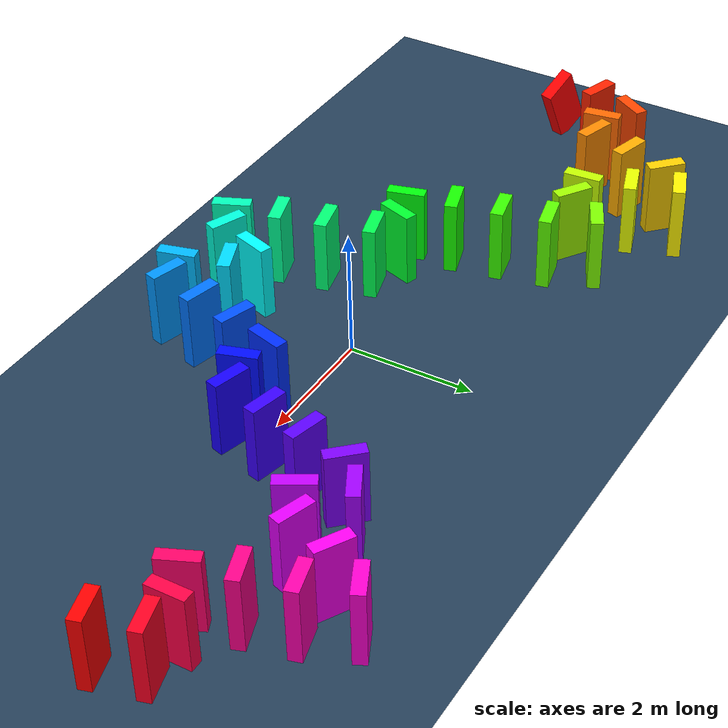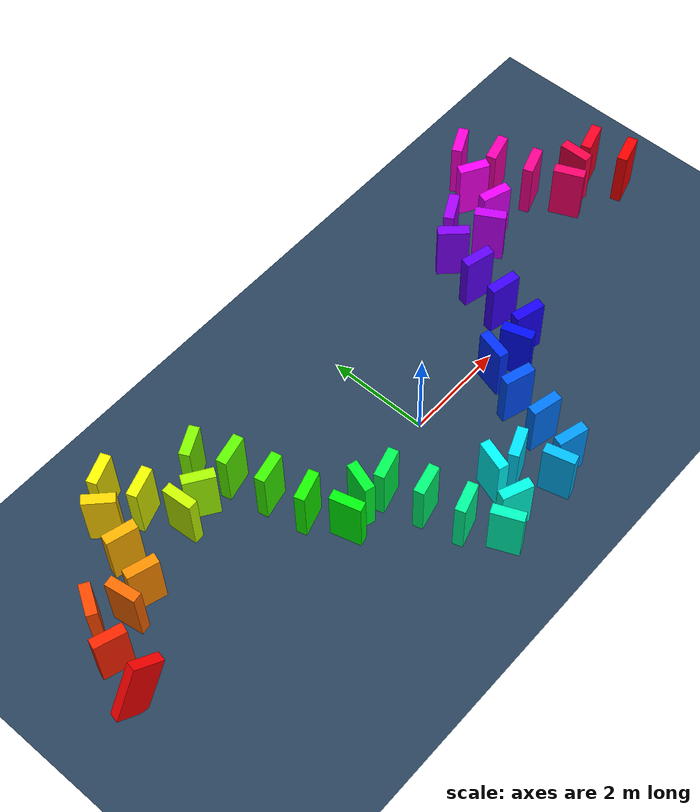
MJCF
<mujoco>
  <visual>
    <headlight diffuse="0.6 0.6 0.6" ambient="0.1 0.1 0.1" specular="0 0 0"/>
    <rgba haze="0.15 0.25 0.35 1"/>
    <global azimuth="120" elevation="-20"/>
  </visual>
  <asset>
    <texture type="skybox" builtin="gradient" rgb1="0.3 0.5 0.7" rgb2="0 0 0" width="512" height="3072"/>
    <texture type="2d" name="groundplane" builtin="checker" mark="edge" rgb1="0.2 0.3 0.4" rgb2="0.1 0.2 0.3" markrgb="0.8 0.8 0.8" width="300" height="300"/>
    <material name="groundplane" texture="groundplane" texuniform="true" texrepeat="5 5" reflectance="0.2"/>
  </asset>
  <worldbody>
    <light pos="0 0 1.5" dir="0 0 -1" directional="true"/>
    <geom name="floor" size="0 0 0.05" type="plane" material="groundplane"/>
    <body name="trigger" pos="-7.0000 0.0000 0.5767" euler="0 28.0 77.4">
      <geom type="box" size="0.1000 0.3000 0.6000" rgba="1.000 0.000 0.000 1"/>
      <freejoint/>
    </body>
    <body name="domino_001" pos="-6.8363 0.7319 0.6000" euler="0 0.0 71.4">
      <geom type="box" size="0.1000 0.3000 0.6000" rgba="1.000 0.136 0.000 1"/>
      <freejoint/>
    </body>
    <body name="domino_002" pos="-6.5982 1.4408 0.6000" euler="0 0.0 -30.8">
      <geom type="box" size="0.1000 0.3000 0.6000" rgba="1.000 0.273 0.000 1"/>
      <freejoint/>
    </body>
    <body name="domino_003" pos="-6.1069 1.1478 0.6000" euler="0 0.0 8.9">
      <geom type="box" size="0.1000 0.3000 0.6000" rgba="1.000 0.409 0.000 1"/>
      <freejoint/>
    </body>
    <body name="domino_004" pos="-5.6272 1.2231 0.6000" euler="0 0.0 73.0">
      <geom type="box" size="0.1000 0.3000 0.6000" rgba="1.000 0.545 0.000 1"/>
      <freejoint/>
    </body>
    <body name="domino_005" pos="-5.4081 1.9400 0.6000" euler="0 0.0 74.5">
      <geom type="box" size="0.1000 0.3000 0.6000" rgba="1.000 0.682 0.000 1"/>
      <freejoint/>
    </body>
    <body name="domino_006" pos="-5.2080 2.6627 0.6000" euler="0 0.0 45.6">
      <geom type="box" size="0.1000 0.3000 0.6000" rgba="1.000 0.818 0.000 1"/>
      <freejoint/>
    </body>
    <body name="domino_007" pos="-4.8010 3.0786 0.6000" euler="0 0.0 -68.5">
      <geom type="box" size="0.1000 0.3000 0.6000" rgba="1.000 0.955 0.000 1"/>
      <freejoint/>
    </body>
    <body name="domino_008" pos="-4.5272 2.3828 0.6000" euler="0 0.0 -71.0">
      <geom type="box" size="0.1000 0.3000 0.6000" rgba="0.909 1.000 0.000 1"/>
      <freejoint/>
    </body>
    <body name="domino_009" pos="-4.2829 1.6741 0.6000" euler="0 0.0 4.2">
      <geom type="box" size="0.1000 0.3000 0.6000" rgba="0.773 1.000 0.000 1"/>
      <freejoint/>
    </body>
    <body name="domino_010" pos="-3.8066 1.7090 0.6000" euler="0 0.0 56.2">
      <geom type="box" size="0.1000 0.3000 0.6000" rgba="0.636 1.000 0.000 1"/>
      <freejoint/>
    </body>
    <body name="domino_011" pos="-3.4008 2.3147 0.6000" euler="0 0.0 -62.9">
      <geom type="box" size="0.1000 0.3000 0.6000" rgba="0.500 1.000 0.000 1"/>
      <freejoint/>
    </body>
    <body name="domino_012" pos="-3.0714 1.6721 0.6000" euler="0 0.0 -76.7">
      <geom type="box" size="0.1000 0.3000 0.6000" rgba="0.364 1.000 0.000 1"/>
      <freejoint/>
    </body>
    <body name="domino_013" pos="-2.8989 0.9423 0.6000" euler="0 0.0 -77.3">
      <geom type="box" size="0.1000 0.3000 0.6000" rgba="0.227 1.000 0.000 1"/>
      <freejoint/>
    </body>
    <body name="domino_014" pos="-2.7340 0.2107 0.6000" euler="0 0.0 -72.7">
      <geom type="box" size="0.1000 0.3000 0.6000" rgba="0.091 1.000 0.000 1"/>
      <freejoint/>
    </body>
    <body name="domino_015" pos="-2.5110 -0.5042 0.6000" euler="0 0.0 15.5">
      <geom type="box" size="0.1000 0.3000 0.6000" rgba="0.000 1.000 0.045 1"/>
      <freejoint/>
    </body>
    <body name="domino_016" pos="-2.0057 -0.3640 0.6000" euler="0 0.0 -17.8">
      <geom type="box" size="0.1000 0.3000 0.6000" rgba="0.000 1.000 0.182 1"/>
      <freejoint/>
    </body>
    <body name="domino_017" pos="-1.5288 -0.5172 0.6000" euler="0 0.0 -74.2">
      <geom type="box" size="0.1000 0.3000 0.6000" rgba="0.000 1.000 0.318 1"/>
      <freejoint/>
    </body>
    <body name="domino_018" pos="-1.3250 -1.2386 0.6000" euler="0 0.0 -76.6">
      <geom type="box" size="0.1000 0.3000 0.6000" rgba="0.000 1.000 0.455 1"/>
      <freejoint/>
    </body>
    <body name="domino_019" pos="-1.1509 -1.9681 0.6000" euler="0 0.0 -72.7">
      <geom type="box" size="0.1000 0.3000 0.6000" rgba="0.000 1.000 0.591 1"/>
      <freejoint/>
    </body>
    <body name="domino_020" pos="-0.9283 -2.6833 0.6000" euler="0 0.0 23.4">
      <geom type="box" size="0.1000 0.3000 0.6000" rgba="0.000 1.000 0.727 1"/>
      <freejoint/>
    </body>
    <body name="domino_021" pos="-0.4838 -2.4908 0.6000" euler="0 0.0 67.6">
      <geom type="box" size="0.1000 0.3000 0.6000" rgba="0.000 1.000 0.864 1"/>
      <freejoint/>
    </body>
    <body name="domino_022" pos="-0.1987 -1.7975 0.6000" euler="0 0.0 -17.7">
      <geom type="box" size="0.1000 0.3000 0.6000" rgba="0.000 1.000 1.000 1"/>
      <freejoint/>
    </body>
    <body name="domino_023" pos="0.2694 -1.9473 0.6000" euler="0 0.0 -67.9">
      <geom type="box" size="0.1000 0.3000 0.6000" rgba="0.000 0.864 1.000 1"/>
      <freejoint/>
    </body>
    <body name="domino_024" pos="0.5511 -2.6422 0.6000" euler="0 0.0 14.4">
      <geom type="box" size="0.1000 0.3000 0.6000" rgba="0.000 0.727 1.000 1"/>
      <freejoint/>
    </body>
    <body name="domino_025" pos="0.9903 -2.5296 0.6000" euler="0 0.0 74.5">
      <geom type="box" size="0.1000 0.3000 0.6000" rgba="0.000 0.591 1.000 1"/>
      <freejoint/>
    </body>
    <body name="domino_026" pos="1.1902 -1.8071 0.6000" euler="0 0.0 76.5">
      <geom type="box" size="0.1000 0.3000 0.6000" rgba="0.000 0.455 1.000 1"/>
      <freejoint/>
    </body>
    <body name="domino_027" pos="1.3646 -1.0776 0.6000" euler="0 0.0 72.3">
      <geom type="box" size="0.1000 0.3000 0.6000" rgba="0.000 0.318 1.000 1"/>
      <freejoint/>
    </body>
    <body name="domino_028" pos="1.5929 -0.3644 0.6000" euler="0 0.0 -15.0">
      <geom type="box" size="0.1000 0.3000 0.6000" rgba="0.000 0.182 1.000 1"/>
      <freejoint/>
    </body>
    <body name="domino_029" pos="2.0999 -0.5004 0.6000" euler="0 0.0 17.5">
      <geom type="box" size="0.1000 0.3000 0.6000" rgba="0.000 0.045 1.000 1"/>
      <freejoint/>
    </body>
    <body name="domino_030" pos="2.5741 -0.3510 0.6000" euler="0 0.0 74.7">
      <geom type="box" size="0.1000 0.3000 0.6000" rgba="0.091 0.000 1.000 1"/>
      <freejoint/>
    </body>
    <body name="domino_031" pos="2.7721 0.3720 0.6000" euler="0 0.0 77.5">
      <geom type="box" size="0.1000 0.3000 0.6000" rgba="0.227 0.000 1.000 1"/>
      <freejoint/>
    </body>
    <body name="domino_032" pos="2.9347 1.1041 0.6000" euler="0 0.0 76.0">
      <geom type="box" size="0.1000 0.3000 0.6000" rgba="0.364 0.000 1.000 1"/>
      <freejoint/>
    </body>
    <body name="domino_033" pos="3.1167 1.8315 0.6000" euler="0 0.0 43.3">
      <geom type="box" size="0.1000 0.3000 0.6000" rgba="0.500 0.000 1.000 1"/>
      <freejoint/>
    </body>
    <body name="domino_034" pos="3.5331 2.2244 0.6000" euler="0 0.0 -61.7">
      <geom type="box" size="0.1000 0.3000 0.6000" rgba="0.636 0.000 1.000 1"/>
      <freejoint/>
    </body>
    <body name="domino_035" pos="3.8884 1.5650 0.6000" euler="0 0.0 29.9">
      <geom type="box" size="0.1000 0.3000 0.6000" rgba="0.773 0.000 1.000 1"/>
      <freejoint/>
    </body>
    <body name="domino_036" pos="4.3454 1.8276 0.6000" euler="0 0.0 72.0">
      <geom type="box" size="0.1000 0.3000 0.6000" rgba="0.909 0.000 1.000 1"/>
      <freejoint/>
    </body>
    <body name="domino_037" pos="4.5772 2.5408 0.6000" euler="0 0.0 60.1">
      <geom type="box" size="0.1000 0.3000 0.6000" rgba="1.000 0.000 0.955 1"/>
      <freejoint/>
    </body>
    <body name="domino_038" pos="4.9342 3.1609 0.6000" euler="0 0.0 -63.9">
      <geom type="box" size="0.1000 0.3000 0.6000" rgba="1.000 0.000 0.818 1"/>
      <freejoint/>
    </body>
    <body name="domino_039" pos="5.2556 2.5040 0.6000" euler="0 0.0 -74.9">
      <geom type="box" size="0.1000 0.3000 0.6000" rgba="1.000 0.000 0.682 1"/>
      <freejoint/>
    </body>
    <body name="domino_040" pos="5.4512 1.7799 0.6000" euler="0 0.0 -70.9">
      <geom type="box" size="0.1000 0.3000 0.6000" rgba="1.000 0.000 0.545 1"/>
      <freejoint/>
    </body>
    <body name="domino_041" pos="5.6966 1.0727 0.6000" euler="0 0.0 23.7">
      <geom type="box" size="0.1000 0.3000 0.6000" rgba="1.000 0.000 0.409 1"/>
      <freejoint/>
    </body>
    <body name="domino_042" pos="6.1923 1.2898 0.6000" euler="0 0.0 0.2">
      <geom type="box" size="0.1000 0.3000 0.6000" rgba="1.000 0.000 0.273 1"/>
      <freejoint/>
    </body>
    <body name="domino_043" pos="6.6695 1.2914 0.6000" euler="0 0.0 -74.1">
      <geom type="box" size="0.1000 0.3000 0.6000" rgba="1.000 0.000 0.136 1"/>
      <freejoint/>
    </body>
    <body name="domino_044" pos="6.8746 0.5706 0.6000" euler="0 0.0 -74.1">
      <geom type="box" size="0.1000 0.3000 0.6000" rgba="1.000 0.000 0.000 1"/>
      <freejoint/>
    </body>
  </worldbody>
</mujoco>
